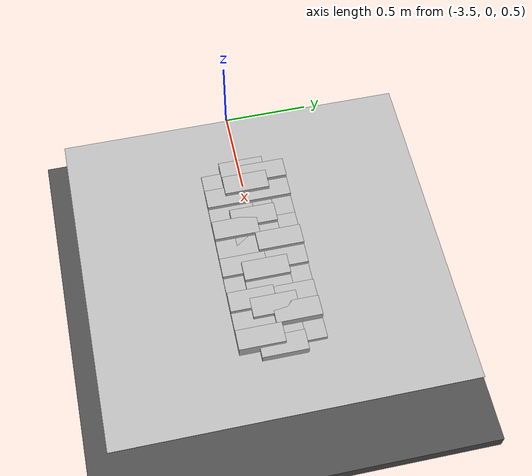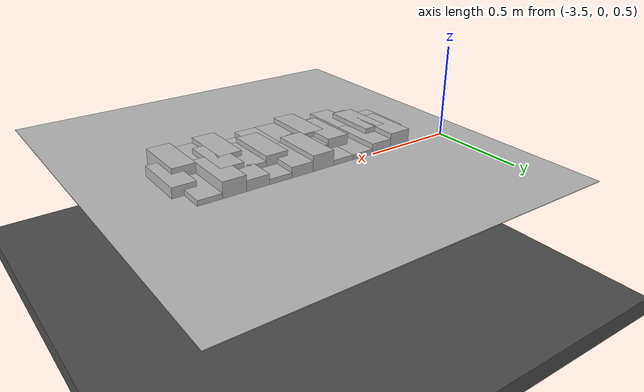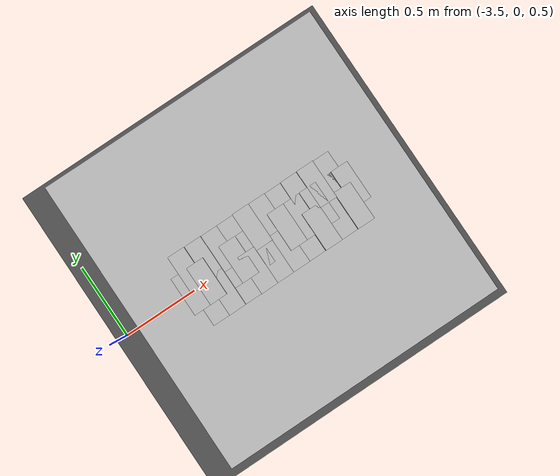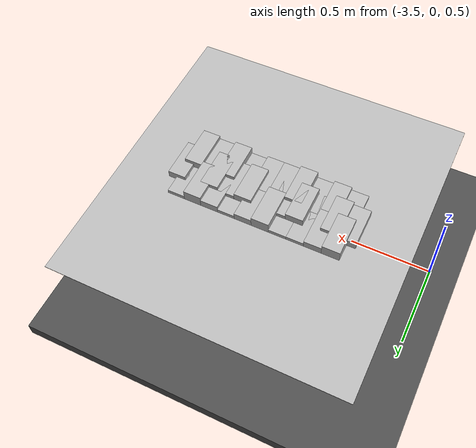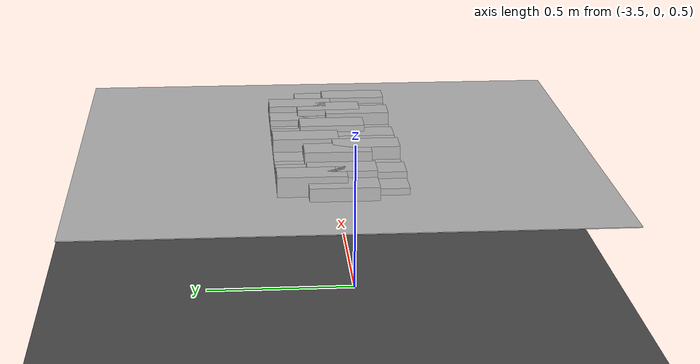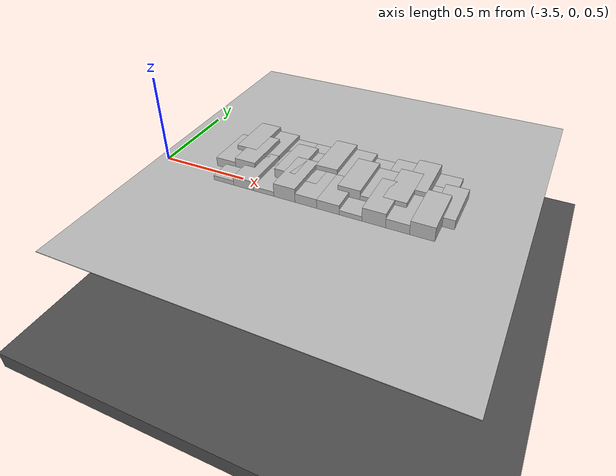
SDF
<sdf version="1.6">
 <world name="default">
  <model name="ground_plane">
   <static>1</static>
   <link name="link">
    <collision name="collision">
     <geometry><plane><normal>0 0 1</normal><size>100 100</size></plane></geometry>
     <surface><friction><ode><mu>100</mu><mu2>50</mu2></ode></friction></surface>
    </collision>
    <visual name="visual">
     <cast_shadows>0</cast_shadows>
     <geometry><plane><normal>0 0 1</normal><size>100 100</size></plane></geometry>
     <material>
      <script><uri>file://media/materials/scripts/gazebo.material</uri><name>Gazebo/Grey</name></script>
     </material>
    </visual>
   </link>
  </model>
  <model name="frc2016_roughterrain_0">
   <link name="link_clone_10">
    <pose>-2.32816 -0.027351 -0.073164 0 -0 0</pose>
    <inertial>
     <inertia><ixx>nan</ixx><ixy>0</ixy><ixz>0</ixz><iyy>nan</iyy><iyz>0</iyz><izz>nan</izz></inertia>
     <mass>0</mass>
    </inertial>
    <visual name="row1_block3_md">
     <pose>0.28575 0.1143 0.10968 0 -0 0</pose>
     <geometry><box><size>0.115452 0.257474 0.0508</size></box></geometry>
     <material><shader type="pixel"/></material>
    </visual>
    <visual name="row1_block4_sm">
     <pose>0.17145 0.1143 0.09698 0 -0 0</pose>
     <geometry><box><size>0.115452 0.257474 0.0254</size></box></geometry>
     <material><shader type="pixel"/></material>
    </visual>
    <visual name="platform">
     <pose>0 0 0.08269 0 -0 0</pose>
     <geometry><box><size>1.91826 2.01688 0.003175</size></box></geometry>
     <material><shader type="pixel"/></material>
    </visual>
    <visual name="row1_block1_sm">
     <pose>0.51435 0.1143 0.09698 0 -0 0</pose>
     <geometry><box><size>0.115452 0.257474 0.0254</size></box></geometry>
     <material><shader type="pixel"/></material>
    </visual>
    <visual name="row1_block2_lg">
     <pose>0.40005 0.1143 0.12238 0 -0 0</pose>
     <geometry><box><size>0.115452 0.257474 0.0762</size></box></geometry>
     <material><shader type="pixel"/></material>
    </visual>
    <visual name="row1_block5_md">
     <pose>0.05715 0.1143 0.10968 0 -0 0</pose>
     <geometry><box><size>0.115452 0.257474 0.0508</size></box></geometry>
     <material><shader type="pixel"/></material>
    </visual>
    <visual name="row1_block6_lg">
     <pose>-0.05715 0.1143 0.12238 0 -0 0</pose>
     <geometry><box><size>0.115452 0.257474 0.0762</size></box></geometry>
     <material><shader type="pixel"/></material>
    </visual>
    <visual name="row1_block7_sm">
     <pose>-0.17145 0.1143 0.09698 0 -0 0</pose>
     <geometry><box><size>0.115452 0.257474 0.0254</size></box></geometry>
     <material><shader type="pixel"/></material>
    </visual>
    <visual name="row1_block8_sm">
     <pose>-0.28575 0.1143 0.09698 0 -0 0</pose>
     <geometry><box><size>0.115452 0.257474 0.0254</size></box></geometry>
     <material><shader type="pixel"/></material>
    </visual>
    <visual name="row1_block9_md">
     <pose>-0.40005 0.1143 0.10968 0 -0 0</pose>
     <geometry><box><size>0.115452 0.257474 0.0508</size></box></geometry>
     <material><shader type="pixel"/></material>
    </visual>
    <visual name="row1_block10_lg">
     <pose>-0.51435 0.1143 0.12238 0 -0 0</pose>
     <geometry><box><size>0.115452 0.257474 0.0762</size></box></geometry>
     <material><shader type="pixel"/></material>
    </visual>
    <visual name="row2_block1_md">
     <pose>0.5715 0 0.10968 0 -0 0</pose>
     <geometry><box><size>0.115452 0.257474 0.0508</size></box></geometry>
     <material><shader type="pixel"/></material>
    </visual>
    <visual name="row2_block2_sm">
     <pose>0.4572 0 0.09698 0 -0 0</pose>
     <geometry><box><size>0.115452 0.257474 0.0254</size></box></geometry>
     <material><shader type="pixel"/></material>
    </visual>
    <visual name="row2_block3_lg">
     <pose>0.3429 0 0.12238 0 -0 0</pose>
     <geometry><box><size>0.115452 0.257474 0.0762</size></box></geometry>
     <material><shader type="pixel"/></material>
    </visual>
    <visual name="row2_block4_md">
     <pose>0.2286 0 0.10968 0 -0 0</pose>
     <geometry><box><size>0.115452 0.257474 0.0508</size></box></geometry>
     <material><shader type="pixel"/></material>
    </visual>
    <visual name="row2_block5_lg">
     <pose>0.1143 0 0.12238 0 -0 0</pose>
     <geometry><box><size>0.115452 0.257474 0.0762</size></box></geometry>
     <material><shader type="pixel"/></material>
    </visual>
    <visual name="row2_block6_sm">
     <pose>0 0 0.09698 0 -0 0</pose>
     <geometry><box><size>0.115452 0.257474 0.0254</size></box></geometry>
     <material><shader type="pixel"/></material>
    </visual>
    <visual name="row2_block7_md">
     <pose>-0.1143 0 0.10968 0 -0 0</pose>
     <geometry><box><size>0.115452 0.257474 0.0508</size></box></geometry>
     <material><shader type="pixel"/></material>
    </visual>
    <visual name="row2_block8_lg">
     <pose>-0.2286 0 0.12238 0 -0 0</pose>
     <geometry><box><size>0.115452 0.257474 0.0762</size></box></geometry>
     <material><shader type="pixel"/></material>
    </visual>
    <visual name="row2_block9_sm">
     <pose>-0.3429 0 0.09698 0 -0 0</pose>
     <geometry><box><size>0.115452 0.257474 0.0254</size></box></geometry>
     <material><shader type="pixel"/></material>
    </visual>
    <visual name="row2_block10_lg">
     <pose>-0.4572 0 0.12238 0 -0 0</pose>
     <geometry><box><size>0.115452 0.257474 0.0762</size></box></geometry>
     <material><shader type="pixel"/></material>
    </visual>
    <visual name="row2_block11_md">
     <pose>-0.5715 0 0.10968 0 -0 0</pose>
     <geometry><box><size>0.115452 0.257474 0.0508</size></box></geometry>
     <material><shader type="pixel"/></material>
    </visual>
    <visual name="row3_block2_md">
     <pose>0.40005 -0.1143 0.10968 0 -0 0</pose>
     <geometry><box><size>0.115452 0.257474 0.0508</size></box></geometry>
     <material><shader type="pixel"/></material>
    </visual>
    <visual name="row3_block1_lg">
     <pose>0.51435 -0.1143 0.12238 0 -0 0</pose>
     <geometry><box><size>0.115452 0.257474 0.0762</size></box></geometry>
     <material><shader type="pixel"/></material>
    </visual>
    <visual name="row3_block3_lg">
     <pose>0.28575 -0.1143 0.12238 0 -0 0</pose>
     <geometry><box><size>0.115452 0.257474 0.0762</size></box></geometry>
     <material><shader type="pixel"/></material>
    </visual>
    <visual name="row3_block4_sm">
     <pose>0.17145 -0.1143 0.09698 0 -0 0</pose>
     <geometry><box><size>0.115452 0.257474 0.0254</size></box></geometry>
     <material><shader type="pixel"/></material>
    </visual>
    <visual name="row3_block5_md">
     <pose>0.05715 -0.1143 0.10968 0 -0 0</pose>
     <geometry><box><size>0.115452 0.257474 0.0508</size></box></geometry>
     <material><shader type="pixel"/></material>
    </visual>
    <visual name="row3_block6_md">
     <pose>-0.05715 -0.1143 0.10968 0 -0 0</pose>
     <geometry><box><size>0.115452 0.257474 0.0508</size></box></geometry>
     <material><shader type="pixel"/></material>
    </visual>
    <visual name="row3_block8_sm">
     <pose>-0.28575 -0.1143 0.09698 0 -0 0</pose>
     <geometry><box><size>0.115452 0.257474 0.0254</size></box></geometry>
     <material><shader type="pixel"/></material>
    </visual>
    <visual name="row3_block7_lg">
     <pose>-0.17145 -0.1143 0.12238 0 -0 0</pose>
     <geometry><box><size>0.115452 0.257474 0.0762</size></box></geometry>
     <material><shader type="pixel"/></material>
    </visual>
    <visual name="row3_block9_md">
     <pose>-0.40005 -0.1143 0.10968 0 -0 0</pose>
     <geometry><box><size>0.115452 0.257474 0.0508</size></box></geometry>
     <material><shader type="pixel"/></material>
    </visual>
    <visual name="row3_block10_sm">
     <pose>-0.51435 -0.1143 0.09698 0 -0 0</pose>
     <geometry><box><size>0.115452 0.257474 0.0254</size></box></geometry>
     <material><shader type="pixel"/></material>
    </visual>
    <collision name="row2_block5_lg_0">
     <pose>0.1143 0 0.12238 0 -0 0</pose>
     <geometry><box><size>0.115452 0.257474 0.0762</size></box></geometry>
     <surface>
      <friction>
       <ode><mu>1</mu><mu2>1</mu2><fdir1>0 0 0</fdir1><slip1>0</slip1><slip2>0</slip2></ode>
       <torsional>
        <coefficient>1</coefficient>
        <patch_radius>0</patch_radius>
        <surface_radius>0</surface_radius>
        <use_patch_radius>1</use_patch_radius>
        <ode><slip>0</slip></ode>
       </torsional>
      </friction>
      <bounce><restitution_coefficient>0</restitution_coefficient><threshold>1e+06</threshold></bounce>
      <contact>
       <collide_without_contact>0</collide_without_contact>
       <collide_without_contact_bitmask>1</collide_without_contact_bitmask>
       <collide_bitmask>1</collide_bitmask>
       <ode>
        <soft_cfm>0</soft_cfm>
        <soft_erp>0.2</soft_erp>
        <kp>1e+13</kp>
        <kd>1</kd>
        <max_vel>0.01</max_vel>
        <min_depth>0</min_depth>
       </ode>
       <bullet>
        <split_impulse>1</split_impulse>
        <split_impulse_penetration_threshold>-0.01</split_impulse_penetration_threshold>
        <soft_cfm>0</soft_cfm>
        <soft_erp>0.2</soft_erp>
        <kp>1e+13</kp>
        <kd>1</kd>
       </bullet>
      </contact>
     </surface>
    </collision>
    <collision name="platform_0">
     <pose>0 0 0.08269 0 -0 0</pose>
     <geometry><box><size>1.91826 2.01688 0.003175</size></box></geometry>
     <surface>
      <friction>
       <ode><mu>1</mu><mu2>1</mu2><fdir1>0 0 0</fdir1><slip1>0</slip1><slip2>0</slip2></ode>
       <torsional>
        <coefficient>1</coefficient>
        <patch_radius>0</patch_radius>
        <surface_radius>0</surface_radius>
        <use_patch_radius>1</use_patch_radius>
        <ode><slip>0</slip></ode>
       </torsional>
      </friction>
      <bounce><restitution_coefficient>0</restitution_coefficient><threshold>1e+06</threshold></bounce>
      <contact>
       <collide_without_contact>0</collide_without_contact>
       <collide_without_contact_bitmask>1</collide_without_contact_bitmask>
       <collide_bitmask>1</collide_bitmask>
       <ode>
        <soft_cfm>0</soft_cfm>
        <soft_erp>0.2</soft_erp>
        <kp>1e+13</kp>
        <kd>1</kd>
        <max_vel>0.01</max_vel>
        <min_depth>0</min_depth>
       </ode>
       <bullet>
        <split_impulse>1</split_impulse>
        <split_impulse_penetration_threshold>-0.01</split_impulse_penetration_threshold>
        <soft_cfm>0</soft_cfm>
        <soft_erp>0.2</soft_erp>
        <kp>1e+13</kp>
        <kd>1</kd>
       </bullet>
      </contact>
     </surface>
    </collision>
    <collision name="row1_block3_md_0">
     <pose>0.28575 0.1143 0.10968 0 -0 0</pose>
     <geometry><box><size>0.115452 0.257474 0.0508</size></box></geometry>
     <surface>
      <friction>
       <ode><mu>1</mu><mu2>1</mu2><fdir1>0 0 0</fdir1><slip1>0</slip1><slip2>0</slip2></ode>
       <torsional>
        <coefficient>1</coefficient>
        <patch_radius>0</patch_radius>
        <surface_radius>0</surface_radius>
        <use_patch_radius>1</use_patch_radius>
        <ode><slip>0</slip></ode>
       </torsional>
      </friction>
      <bounce><restitution_coefficient>0</restitution_coefficient><threshold>1e+06</threshold></bounce>
      <contact>
       <collide_without_contact>0</collide_without_contact>
       <collide_without_contact_bitmask>1</collide_without_contact_bitmask>
       <collide_bitmask>1</collide_bitmask>
       <ode>
        <soft_cfm>0</soft_cfm>
        <soft_erp>0.2</soft_erp>
        <kp>1e+13</kp>
        <kd>1</kd>
        <max_vel>0.01</max_vel>
        <min_depth>0</min_depth>
       </ode>
       <bullet>
        <split_impulse>1</split_impulse>
        <split_impulse_penetration_threshold>-0.01</split_impulse_penetration_threshold>
        <soft_cfm>0</soft_cfm>
        <soft_erp>0.2</soft_erp>
        <kp>1e+13</kp>
        <kd>1</kd>
       </bullet>
      </contact>
     </surface>
    </collision>
    <collision name="row1_block2_lg_0">
     <pose>0.40005 0.1143 0.12238 0 -0 0</pose>
     <geometry><box><size>0.115452 0.257474 0.0762</size></box></geometry>
     <surface>
      <friction>
       <ode><mu>1</mu><mu2>1</mu2><fdir1>0 0 0</fdir1><slip1>0</slip1><slip2>0</slip2></ode>
       <torsional>
        <coefficient>1</coefficient>
        <patch_radius>0</patch_radius>
        <surface_radius>0</surface_radius>
        <use_patch_radius>1</use_patch_radius>
        <ode><slip>0</slip></ode>
       </torsional>
      </friction>
      <bounce><restitution_coefficient>0</restitution_coefficient><threshold>1e+06</threshold></bounce>
      <contact>
       <collide_without_contact>0</collide_without_contact>
       <collide_without_contact_bitmask>1</collide_without_contact_bitmask>
       <collide_bitmask>1</collide_bitmask>
       <ode>
        <soft_cfm>0</soft_cfm>
        <soft_erp>0.2</soft_erp>
        <kp>1e+13</kp>
        <kd>1</kd>
        <max_vel>0.01</max_vel>
        <min_depth>0</min_depth>
       </ode>
       <bullet>
        <split_impulse>1</split_impulse>
        <split_impulse_penetration_threshold>-0.01</split_impulse_penetration_threshold>
        <soft_cfm>0</soft_cfm>
        <soft_erp>0.2</soft_erp>
        <kp>1e+13</kp>
        <kd>1</kd>
       </bullet>
      </contact>
     </surface>
    </collision>
    <collision name="row1_block1_sm_0">
     <pose>0.51435 0.1143 0.09698 0 -0 0</pose>
     <geometry><box><size>0.115452 0.257474 0.0254</size></box></geometry>
     <surface>
      <friction>
       <ode><mu>1</mu><mu2>1</mu2><fdir1>0 0 0</fdir1><slip1>0</slip1><slip2>0</slip2></ode>
       <torsional>
        <coefficient>1</coefficient>
        <patch_radius>0</patch_radius>
        <surface_radius>0</surface_radius>
        <use_patch_radius>1</use_patch_radius>
        <ode><slip>0</slip></ode>
       </torsional>
      </friction>
      <bounce><restitution_coefficient>0</restitution_coefficient><threshold>1e+06</threshold></bounce>
      <contact>
       <collide_without_contact>0</collide_without_contact>
       <collide_without_contact_bitmask>1</collide_without_contact_bitmask>
       <collide_bitmask>1</collide_bitmask>
       <ode>
        <soft_cfm>0</soft_cfm>
        <soft_erp>0.2</soft_erp>
        <kp>1e+13</kp>
        <kd>1</kd>
        <max_vel>0.01</max_vel>
        <min_depth>0</min_depth>
       </ode>
       <bullet>
        <split_impulse>1</split_impulse>
        <split_impulse_penetration_threshold>-0.01</split_impulse_penetration_threshold>
        <soft_cfm>0</soft_cfm>
        <soft_erp>0.2</soft_erp>
        <kp>1e+13</kp>
        <kd>1</kd>
       </bullet>
      </contact>
     </surface>
    </collision>
    <collision name="row1_block5_md_0">
     <pose>0.05715 0.1143 0.10968 0 -0 0</pose>
     <geometry><box><size>0.115452 0.257474 0.0508</size></box></geometry>
     <surface>
      <friction>
       <ode><mu>1</mu><mu2>1</mu2><fdir1>0 0 0</fdir1><slip1>0</slip1><slip2>0</slip2></ode>
       <torsional>
        <coefficient>1</coefficient>
        <patch_radius>0</patch_radius>
        <surface_radius>0</surface_radius>
        <use_patch_radius>1</use_patch_radius>
        <ode><slip>0</slip></ode>
       </torsional>
      </friction>
      <bounce><restitution_coefficient>0</restitution_coefficient><threshold>1e+06</threshold></bounce>
      <contact>
       <collide_without_contact>0</collide_without_contact>
       <collide_without_contact_bitmask>1</collide_without_contact_bitmask>
       <collide_bitmask>1</collide_bitmask>
       <ode>
        <soft_cfm>0</soft_cfm>
        <soft_erp>0.2</soft_erp>
        <kp>1e+13</kp>
        <kd>1</kd>
        <max_vel>0.01</max_vel>
        <min_depth>0</min_depth>
       </ode>
       <bullet>
        <split_impulse>1</split_impulse>
        <split_impulse_penetration_threshold>-0.01</split_impulse_penetration_threshold>
        <soft_cfm>0</soft_cfm>
        <soft_erp>0.2</soft_erp>
        <kp>1e+13</kp>
        <kd>1</kd>
       </bullet>
      </contact>
     </surface>
    </collision>
    <collision name="row1_block4_sm_0">
     <pose>0.17145 0.1143 0.09698 0 -0 0</pose>
     <geometry><box><size>0.115452 0.257474 0.0254</size></box></geometry>
     <surface>
      <friction>
       <ode><mu>1</mu><mu2>1</mu2><fdir1>0 0 0</fdir1><slip1>0</slip1><slip2>0</slip2></ode>
       <torsional>
        <coefficient>1</coefficient>
        <patch_radius>0</patch_radius>
        <surface_radius>0</surface_radius>
        <use_patch_radius>1</use_patch_radius>
        <ode><slip>0</slip></ode>
       </torsional>
      </friction>
      <bounce><restitution_coefficient>0</restitution_coefficient><threshold>1e+06</threshold></bounce>
      <contact>
       <collide_without_contact>0</collide_without_contact>
       <collide_without_contact_bitmask>1</collide_without_contact_bitmask>
       <collide_bitmask>1</collide_bitmask>
       <ode>
        <soft_cfm>0</soft_cfm>
        <soft_erp>0.2</soft_erp>
        <kp>1e+13</kp>
        <kd>1</kd>
        <max_vel>0.01</max_vel>
        <min_depth>0</min_depth>
       </ode>
       <bullet>
        <split_impulse>1</split_impulse>
        <split_impulse_penetration_threshold>-0.01</split_impulse_penetration_threshold>
        <soft_cfm>0</soft_cfm>
        <soft_erp>0.2</soft_erp>
        <kp>1e+13</kp>
        <kd>1</kd>
       </bullet>
      </contact>
     </surface>
    </collision>
    <collision name="row1_block6_lg_0">
     <pose>-0.05715 0.1143 0.12238 0 -0 0</pose>
     <geometry><box><size>0.115452 0.257474 0.0762</size></box></geometry>
     <surface>
      <friction>
       <ode><mu>1</mu><mu2>1</mu2><fdir1>0 0 0</fdir1><slip1>0</slip1><slip2>0</slip2></ode>
       <torsional>
        <coefficient>1</coefficient>
        <patch_radius>0</patch_radius>
        <surface_radius>0</surface_radius>
        <use_patch_radius>1</use_patch_radius>
        <ode><slip>0</slip></ode>
       </torsional>
      </friction>
      <bounce><restitution_coefficient>0</restitution_coefficient><threshold>1e+06</threshold></bounce>
      <contact>
       <collide_without_contact>0</collide_without_contact>
       <collide_without_contact_bitmask>1</collide_without_contact_bitmask>
       <collide_bitmask>1</collide_bitmask>
       <ode>
        <soft_cfm>0</soft_cfm>
        <soft_erp>0.2</soft_erp>
        <kp>1e+13</kp>
        <kd>1</kd>
        <max_vel>0.01</max_vel>
        <min_depth>0</min_depth>
       </ode>
       <bullet>
        <split_impulse>1</split_impulse>
        <split_impulse_penetration_threshold>-0.01</split_impulse_penetration_threshold>
        <soft_cfm>0</soft_cfm>
        <soft_erp>0.2</soft_erp>
        <kp>1e+13</kp>
        <kd>1</kd>
       </bullet>
      </contact>
     </surface>
    </collision>
    <collision name="row1_block7_sm_0">
     <pose>-0.17145 0.1143 0.09698 0 -0 0</pose>
     <geometry><box><size>0.115452 0.257474 0.0254</size></box></geometry>
     <surface>
      <friction>
       <ode><mu>1</mu><mu2>1</mu2><fdir1>0 0 0</fdir1><slip1>0</slip1><slip2>0</slip2></ode>
       <torsional>
        <coefficient>1</coefficient>
        <patch_radius>0</patch_radius>
        <surface_radius>0</surface_radius>
        <use_patch_radius>1</use_patch_radius>
        <ode><slip>0</slip></ode>
       </torsional>
      </friction>
      <bounce><restitution_coefficient>0</restitution_coefficient><threshold>1e+06</threshold></bounce>
      <contact>
       <collide_without_contact>0</collide_without_contact>
       <collide_without_contact_bitmask>1</collide_without_contact_bitmask>
       <collide_bitmask>1</collide_bitmask>
       <ode>
        <soft_cfm>0</soft_cfm>
        <soft_erp>0.2</soft_erp>
        <kp>1e+13</kp>
        <kd>1</kd>
        <max_vel>0.01</max_vel>
        <min_depth>0</min_depth>
       </ode>
       <bullet>
        <split_impulse>1</split_impulse>
        <split_impulse_penetration_threshold>-0.01</split_impulse_penetration_threshold>
        <soft_cfm>0</soft_cfm>
        <soft_erp>0.2</soft_erp>
        <kp>1e+13</kp>
        <kd>1</kd>
       </bullet>
      </contact>
     </surface>
    </collision>
    <collision name="row2_block1_md_0">
     <pose>0.5715 0 0.10968 0 -0 0</pose>
     <geometry><box><size>0.115452 0.257474 0.0508</size></box></geometry>
     <surface>
      <friction>
       <ode><mu>1</mu><mu2>1</mu2><fdir1>0 0 0</fdir1><slip1>0</slip1><slip2>0</slip2></ode>
       <torsional>
        <coefficient>1</coefficient>
        <patch_radius>0</patch_radius>
        <surface_radius>0</surface_radius>
        <use_patch_radius>1</use_patch_radius>
        <ode><slip>0</slip></ode>
       </torsional>
      </friction>
      <bounce><restitution_coefficient>0</restitution_coefficient><threshold>1e+06</threshold></bounce>
      <contact>
       <collide_without_contact>0</collide_without_contact>
       <collide_without_contact_bitmask>1</collide_without_contact_bitmask>
       <collide_bitmask>1</collide_bitmask>
       <ode>
        <soft_cfm>0</soft_cfm>
        <soft_erp>0.2</soft_erp>
        <kp>1e+13</kp>
        <kd>1</kd>
        <max_vel>0.01</max_vel>
        <min_depth>0</min_depth>
       </ode>
       <bullet>
        <split_impulse>1</split_impulse>
        <split_impulse_penetration_threshold>-0.01</split_impulse_penetration_threshold>
        <soft_cfm>0</soft_cfm>
        <soft_erp>0.2</soft_erp>
        <kp>1e+13</kp>
        <kd>1</kd>
       </bullet>
      </contact>
     </surface>
    </collision>
    <collision name="row1_block8_sm_0">
     <pose>-0.28575 0.1143 0.09698 0 -0 0</pose>
     <geometry><box><size>0.115452 0.257474 0.0254</size></box></geometry>
     <surface>
      <friction>
       <ode><mu>1</mu><mu2>1</mu2><fdir1>0 0 0</fdir1><slip1>0</slip1><slip2>0</slip2></ode>
       <torsional>
        <coefficient>1</coefficient>
        <patch_radius>0</patch_radius>
        <surface_radius>0</surface_radius>
        <use_patch_radius>1</use_patch_radius>
        <ode><slip>0</slip></ode>
       </torsional>
      </friction>
      <bounce><restitution_coefficient>0</restitution_coefficient><threshold>1e+06</threshold></bounce>
      <contact>
       <collide_without_contact>0</collide_without_contact>
       <collide_without_contact_bitmask>1</collide_without_contact_bitmask>
       <collide_bitmask>1</collide_bitmask>
       <ode>
        <soft_cfm>0</soft_cfm>
        <soft_erp>0.2</soft_erp>
        <kp>1e+13</kp>
        <kd>1</kd>
        <max_vel>0.01</max_vel>
        <min_depth>0</min_depth>
       </ode>
       <bullet>
        <split_impulse>1</split_impulse>
        <split_impulse_penetration_threshold>-0.01</split_impulse_penetration_threshold>
        <soft_cfm>0</soft_cfm>
        <soft_erp>0.2</soft_erp>
        <kp>1e+13</kp>
        <kd>1</kd>
       </bullet>
      </contact>
     </surface>
    </collision>
    <collision name="row1_block10_lg_0">
     <pose>-0.51435 0.1143 0.12238 0 -0 0</pose>
     <geometry><box><size>0.115452 0.257474 0.0762</size></box></geometry>
     <surface>
      <friction>
       <ode><mu>1</mu><mu2>1</mu2><fdir1>0 0 0</fdir1><slip1>0</slip1><slip2>0</slip2></ode>
       <torsional>
        <coefficient>1</coefficient>
        <patch_radius>0</patch_radius>
        <surface_radius>0</surface_radius>
        <use_patch_radius>1</use_patch_radius>
        <ode><slip>0</slip></ode>
       </torsional>
      </friction>
      <bounce><restitution_coefficient>0</restitution_coefficient><threshold>1e+06</threshold></bounce>
      <contact>
       <collide_without_contact>0</collide_without_contact>
       <collide_without_contact_bitmask>1</collide_without_contact_bitmask>
       <collide_bitmask>1</collide_bitmask>
       <ode>
        <soft_cfm>0</soft_cfm>
        <soft_erp>0.2</soft_erp>
        <kp>1e+13</kp>
        <kd>1</kd>
        <max_vel>0.01</max_vel>
        <min_depth>0</min_depth>
       </ode>
       <bullet>
        <split_impulse>1</split_impulse>
        <split_impulse_penetration_threshold>-0.01</split_impulse_penetration_threshold>
        <soft_cfm>0</soft_cfm>
        <soft_erp>0.2</soft_erp>
        <kp>1e+13</kp>
        <kd>1</kd>
       </bullet>
      </contact>
     </surface>
    </collision>
    <collision name="row1_block9_md_0">
     <pose>-0.40005 0.1143 0.10968 0 -0 0</pose>
     <geometry><box><size>0.115452 0.257474 0.0508</size></box></geometry>
     <surface>
      <friction>
       <ode><mu>1</mu><mu2>1</mu2><fdir1>0 0 0</fdir1><slip1>0</slip1><slip2>0</slip2></ode>
       <torsional>
        <coefficient>1</coefficient>
        <patch_radius>0</patch_radius>
        <surface_radius>0</surface_radius>
        <use_patch_radius>1</use_patch_radius>
        <ode><slip>0</slip></ode>
       </torsional>
      </friction>
      <bounce><restitution_coefficient>0</restitution_coefficient><threshold>1e+06</threshold></bounce>
      <contact>
       <collide_without_contact>0</collide_without_contact>
       <collide_without_contact_bitmask>1</collide_without_contact_bitmask>
       <collide_bitmask>1</collide_bitmask>
       <ode>
        <soft_cfm>0</soft_cfm>
        <soft_erp>0.2</soft_erp>
        <kp>1e+13</kp>
        <kd>1</kd>
        <max_vel>0.01</max_vel>
        <min_depth>0</min_depth>
       </ode>
       <bullet>
        <split_impulse>1</split_impulse>
        <split_impulse_penetration_threshold>-0.01</split_impulse_penetration_threshold>
        <soft_cfm>0</soft_cfm>
        <soft_erp>0.2</soft_erp>
        <kp>1e+13</kp>
        <kd>1</kd>
       </bullet>
      </contact>
     </surface>
    </collision>
    <collision name="row2_block2_sm_0">
     <pose>0.4572 0 0.09698 0 -0 0</pose>
     <geometry><box><size>0.115452 0.257474 0.0254</size></box></geometry>
     <surface>
      <friction>
       <ode><mu>1</mu><mu2>1</mu2><fdir1>0 0 0</fdir1><slip1>0</slip1><slip2>0</slip2></ode>
       <torsional>
        <coefficient>1</coefficient>
        <patch_radius>0</patch_radius>
        <surface_radius>0</surface_radius>
        <use_patch_radius>1</use_patch_radius>
        <ode><slip>0</slip></ode>
       </torsional>
      </friction>
      <bounce><restitution_coefficient>0</restitution_coefficient><threshold>1e+06</threshold></bounce>
      <contact>
       <collide_without_contact>0</collide_without_contact>
       <collide_without_contact_bitmask>1</collide_without_contact_bitmask>
       <collide_bitmask>1</collide_bitmask>
       <ode>
        <soft_cfm>0</soft_cfm>
        <soft_erp>0.2</soft_erp>
        <kp>1e+13</kp>
        <kd>1</kd>
        <max_vel>0.01</max_vel>
        <min_depth>0</min_depth>
       </ode>
       <bullet>
        <split_impulse>1</split_impulse>
        <split_impulse_penetration_threshold>-0.01</split_impulse_penetration_threshold>
        <soft_cfm>0</soft_cfm>
        <soft_erp>0.2</soft_erp>
        <kp>1e+13</kp>
        <kd>1</kd>
       </bullet>
      </contact>
     </surface>
    </collision>
    <collision name="row2_block4_md_0">
     <pose>0.2286 0 0.10968 0 -0 0</pose>
     <geometry><box><size>0.115452 0.257474 0.0508</size></box></geometry>
     <surface>
      <friction>
       <ode><mu>1</mu><mu2>1</mu2><fdir1>0 0 0</fdir1><slip1>0</slip1><slip2>0</slip2></ode>
       <torsional>
        <coefficient>1</coefficient>
        <patch_radius>0</patch_radius>
        <surface_radius>0</surface_radius>
        <use_patch_radius>1</use_patch_radius>
        <ode><slip>0</slip></ode>
       </torsional>
      </friction>
      <bounce><restitution_coefficient>0</restitution_coefficient><threshold>1e+06</threshold></bounce>
      <contact>
       <collide_without_contact>0</collide_without_contact>
       <collide_without_contact_bitmask>1</collide_without_contact_bitmask>
       <collide_bitmask>1</collide_bitmask>
       <ode>
        <soft_cfm>0</soft_cfm>
        <soft_erp>0.2</soft_erp>
        <kp>1e+13</kp>
        <kd>1</kd>
        <max_vel>0.01</max_vel>
        <min_depth>0</min_depth>
       </ode>
       <bullet>
        <split_impulse>1</split_impulse>
        <split_impulse_penetration_threshold>-0.01</split_impulse_penetration_threshold>
        <soft_cfm>0</soft_cfm>
        <soft_erp>0.2</soft_erp>
        <kp>1e+13</kp>
        <kd>1</kd>
       </bullet>
      </contact>
     </surface>
    </collision>
    <collision name="row2_block6_sm_0">
     <pose>0 0 0.09698 0 -0 0</pose>
     <geometry><box><size>0.115452 0.257474 0.0254</size></box></geometry>
     <surface>
      <friction>
       <ode><mu>1</mu><mu2>1</mu2><fdir1>0 0 0</fdir1><slip1>0</slip1><slip2>0</slip2></ode>
       <torsional>
        <coefficient>1</coefficient>
        <patch_radius>0</patch_radius>
        <surface_radius>0</surface_radius>
        <use_patch_radius>1</use_patch_radius>
        <ode><slip>0</slip></ode>
       </torsional>
      </friction>
      <bounce><restitution_coefficient>0</restitution_coefficient><threshold>1e+06</threshold></bounce>
      <contact>
       <collide_without_contact>0</collide_without_contact>
       <collide_without_contact_bitmask>1</collide_without_contact_bitmask>
       <collide_bitmask>1</collide_bitmask>
       <ode>
        <soft_cfm>0</soft_cfm>
        <soft_erp>0.2</soft_erp>
        <kp>1e+13</kp>
        <kd>1</kd>
        <max_vel>0.01</max_vel>
        <min_depth>0</min_depth>
       </ode>
       <bullet>
        <split_impulse>1</split_impulse>
        <split_impulse_penetration_threshold>-0.01</split_impulse_penetration_threshold>
        <soft_cfm>0</soft_cfm>
        <soft_erp>0.2</soft_erp>
        <kp>1e+13</kp>
        <kd>1</kd>
       </bullet>
      </contact>
     </surface>
    </collision>
    <collision name="row2_block3_lg_0">
     <pose>0.3429 0 0.12238 0 -0 0</pose>
     <geometry><box><size>0.115452 0.257474 0.0762</size></box></geometry>
     <surface>
      <friction>
       <ode><mu>1</mu><mu2>1</mu2><fdir1>0 0 0</fdir1><slip1>0</slip1><slip2>0</slip2></ode>
       <torsional>
        <coefficient>1</coefficient>
        <patch_radius>0</patch_radius>
        <surface_radius>0</surface_radius>
        <use_patch_radius>1</use_patch_radius>
        <ode><slip>0</slip></ode>
       </torsional>
      </friction>
      <bounce><restitution_coefficient>0</restitution_coefficient><threshold>1e+06</threshold></bounce>
      <contact>
       <collide_without_contact>0</collide_without_contact>
       <collide_without_contact_bitmask>1</collide_without_contact_bitmask>
       <collide_bitmask>1</collide_bitmask>
       <ode>
        <soft_cfm>0</soft_cfm>
        <soft_erp>0.2</soft_erp>
        <kp>1e+13</kp>
        <kd>1</kd>
        <max_vel>0.01</max_vel>
        <min_depth>0</min_depth>
       </ode>
       <bullet>
        <split_impulse>1</split_impulse>
        <split_impulse_penetration_threshold>-0.01</split_impulse_penetration_threshold>
        <soft_cfm>0</soft_cfm>
        <soft_erp>0.2</soft_erp>
        <kp>1e+13</kp>
        <kd>1</kd>
       </bullet>
      </contact>
     </surface>
    </collision>
    <collision name="row2_block7_md_0">
     <pose>-0.1143 0 0.10968 0 -0 0</pose>
     <geometry><box><size>0.115452 0.257474 0.0508</size></box></geometry>
     <surface>
      <friction>
       <ode><mu>1</mu><mu2>1</mu2><fdir1>0 0 0</fdir1><slip1>0</slip1><slip2>0</slip2></ode>
       <torsional>
        <coefficient>1</coefficient>
        <patch_radius>0</patch_radius>
        <surface_radius>0</surface_radius>
        <use_patch_radius>1</use_patch_radius>
        <ode><slip>0</slip></ode>
       </torsional>
      </friction>
      <bounce><restitution_coefficient>0</restitution_coefficient><threshold>1e+06</threshold></bounce>
      <contact>
       <collide_without_contact>0</collide_without_contact>
       <collide_without_contact_bitmask>1</collide_without_contact_bitmask>
       <collide_bitmask>1</collide_bitmask>
       <ode>
        <soft_cfm>0</soft_cfm>
        <soft_erp>0.2</soft_erp>
        <kp>1e+13</kp>
        <kd>1</kd>
        <max_vel>0.01</max_vel>
        <min_depth>0</min_depth>
       </ode>
       <bullet>
        <split_impulse>1</split_impulse>
        <split_impulse_penetration_threshold>-0.01</split_impulse_penetration_threshold>
        <soft_cfm>0</soft_cfm>
        <soft_erp>0.2</soft_erp>
        <kp>1e+13</kp>
        <kd>1</kd>
       </bullet>
      </contact>
     </surface>
    </collision>
    <collision name="row2_block9_sm_0">
     <pose>-0.3429 0 0.09698 0 -0 0</pose>
     <geometry><box><size>0.115452 0.257474 0.0254</size></box></geometry>
     <surface>
      <friction>
       <ode><mu>1</mu><mu2>1</mu2><fdir1>0 0 0</fdir1><slip1>0</slip1><slip2>0</slip2></ode>
       <torsional>
        <coefficient>1</coefficient>
        <patch_radius>0</patch_radius>
        <surface_radius>0</surface_radius>
        <use_patch_radius>1</use_patch_radius>
        <ode><slip>0</slip></ode>
       </torsional>
      </friction>
      <bounce><restitution_coefficient>0</restitution_coefficient><threshold>1e+06</threshold></bounce>
      <contact>
       <collide_without_contact>0</collide_without_contact>
       <collide_without_contact_bitmask>1</collide_without_contact_bitmask>
       <collide_bitmask>1</collide_bitmask>
       <ode>
        <soft_cfm>0</soft_cfm>
        <soft_erp>0.2</soft_erp>
        <kp>1e+13</kp>
        <kd>1</kd>
        <max_vel>0.01</max_vel>
        <min_depth>0</min_depth>
       </ode>
       <bullet>
        <split_impulse>1</split_impulse>
        <split_impulse_penetration_threshold>-0.01</split_impulse_penetration_threshold>
        <soft_cfm>0</soft_cfm>
        <soft_erp>0.2</soft_erp>
        <kp>1e+13</kp>
        <kd>1</kd>
       </bullet>
      </contact>
     </surface>
    </collision>
    <collision name="row2_block10_lg_0">
     <pose>-0.4572 0 0.12238 0 -0 0</pose>
     <geometry><box><size>0.115452 0.257474 0.0762</size></box></geometry>
     <surface>
      <friction>
       <ode><mu>1</mu><mu2>1</mu2><fdir1>0 0 0</fdir1><slip1>0</slip1><slip2>0</slip2></ode>
       <torsional>
        <coefficient>1</coefficient>
        <patch_radius>0</patch_radius>
        <surface_radius>0</surface_radius>
        <use_patch_radius>1</use_patch_radius>
        <ode><slip>0</slip></ode>
       </torsional>
      </friction>
      <bounce><restitution_coefficient>0</restitution_coefficient><threshold>1e+06</threshold></bounce>
      <contact>
       <collide_without_contact>0</collide_without_contact>
       <collide_without_contact_bitmask>1</collide_without_contact_bitmask>
       <collide_bitmask>1</collide_bitmask>
       <ode>
        <soft_cfm>0</soft_cfm>
        <soft_erp>0.2</soft_erp>
        <kp>1e+13</kp>
        <kd>1</kd>
        <max_vel>0.01</max_vel>
        <min_depth>0</min_depth>
       </ode>
       <bullet>
        <split_impulse>1</split_impulse>
        <split_impulse_penetration_threshold>-0.01</split_impulse_penetration_threshold>
        <soft_cfm>0</soft_cfm>
        <soft_erp>0.2</soft_erp>
        <kp>1e+13</kp>
        <kd>1</kd>
       </bullet>
      </contact>
     </surface>
    </collision>
    <collision name="row2_block8_lg_0">
     <pose>-0.2286 0 0.12238 0 -0 0</pose>
     <geometry><box><size>0.115452 0.257474 0.0762</size></box></geometry>
     <surface>
      <friction>
       <ode><mu>1</mu><mu2>1</mu2><fdir1>0 0 0</fdir1><slip1>0</slip1><slip2>0</slip2></ode>
       <torsional>
        <coefficient>1</coefficient>
        <patch_radius>0</patch_radius>
        <surface_radius>0</surface_radius>
        <use_patch_radius>1</use_patch_radius>
        <ode><slip>0</slip></ode>
       </torsional>
      </friction>
      <bounce><restitution_coefficient>0</restitution_coefficient><threshold>1e+06</threshold></bounce>
      <contact>
       <collide_without_contact>0</collide_without_contact>
       <collide_without_contact_bitmask>1</collide_without_contact_bitmask>
       <collide_bitmask>1</collide_bitmask>
       <ode>
        <soft_cfm>0</soft_cfm>
        <soft_erp>0.2</soft_erp>
        <kp>1e+13</kp>
        <kd>1</kd>
        <max_vel>0.01</max_vel>
        <min_depth>0</min_depth>
       </ode>
       <bullet>
        <split_impulse>1</split_impulse>
        <split_impulse_penetration_threshold>-0.01</split_impulse_penetration_threshold>
        <soft_cfm>0</soft_cfm>
        <soft_erp>0.2</soft_erp>
        <kp>1e+13</kp>
        <kd>1</kd>
       </bullet>
      </contact>
     </surface>
    </collision>
    <collision name="row2_block11_md_0">
     <pose>-0.5715 0 0.10968 0 -0 0</pose>
     <geometry><box><size>0.115452 0.257474 0.0508</size></box></geometry>
     <surface>
      <friction>
       <ode><mu>1</mu><mu2>1</mu2><fdir1>0 0 0</fdir1><slip1>0</slip1><slip2>0</slip2></ode>
       <torsional>
        <coefficient>1</coefficient>
        <patch_radius>0</patch_radius>
        <surface_radius>0</surface_radius>
        <use_patch_radius>1</use_patch_radius>
        <ode><slip>0</slip></ode>
       </torsional>
      </friction>
      <bounce><restitution_coefficient>0</restitution_coefficient><threshold>1e+06</threshold></bounce>
      <contact>
       <collide_without_contact>0</collide_without_contact>
       <collide_without_contact_bitmask>1</collide_without_contact_bitmask>
       <collide_bitmask>1</collide_bitmask>
       <ode>
        <soft_cfm>0</soft_cfm>
        <soft_erp>0.2</soft_erp>
        <kp>1e+13</kp>
        <kd>1</kd>
        <max_vel>0.01</max_vel>
        <min_depth>0</min_depth>
       </ode>
       <bullet>
        <split_impulse>1</split_impulse>
        <split_impulse_penetration_threshold>-0.01</split_impulse_penetration_threshold>
        <soft_cfm>0</soft_cfm>
        <soft_erp>0.2</soft_erp>
        <kp>1e+13</kp>
        <kd>1</kd>
       </bullet>
      </contact>
     </surface>
    </collision>
    <collision name="row3_block1_lg_0">
     <pose>0.51435 -0.1143 0.12238 0 -0 0</pose>
     <geometry><box><size>0.115452 0.257474 0.0762</size></box></geometry>
     <surface>
      <friction>
       <ode><mu>1</mu><mu2>1</mu2><fdir1>0 0 0</fdir1><slip1>0</slip1><slip2>0</slip2></ode>
       <torsional>
        <coefficient>1</coefficient>
        <patch_radius>0</patch_radius>
        <surface_radius>0</surface_radius>
        <use_patch_radius>1</use_patch_radius>
        <ode><slip>0</slip></ode>
       </torsional>
      </friction>
      <bounce><restitution_coefficient>0</restitution_coefficient><threshold>1e+06</threshold></bounce>
      <contact>
       <collide_without_contact>0</collide_without_contact>
       <collide_without_contact_bitmask>1</collide_without_contact_bitmask>
       <collide_bitmask>1</collide_bitmask>
       <ode>
        <soft_cfm>0</soft_cfm>
        <soft_erp>0.2</soft_erp>
        <kp>1e+13</kp>
        <kd>1</kd>
        <max_vel>0.01</max_vel>
        <min_depth>0</min_depth>
       </ode>
       <bullet>
        <split_impulse>1</split_impulse>
        <split_impulse_penetration_threshold>-0.01</split_impulse_penetration_threshold>
        <soft_cfm>0</soft_cfm>
        <soft_erp>0.2</soft_erp>
        <kp>1e+13</kp>
        <kd>1</kd>
       </bullet>
      </contact>
     </surface>
    </collision>
    <collision name="row3_block2_md_0">
     <pose>0.40005 -0.1143 0.10968 0 -0 0</pose>
     <geometry><box><size>0.115452 0.257474 0.0508</size></box></geometry>
     <surface>
      <friction>
       <ode><mu>1</mu><mu2>1</mu2><fdir1>0 0 0</fdir1><slip1>0</slip1><slip2>0</slip2></ode>
       <torsional>
        <coefficient>1</coefficient>
        <patch_radius>0</patch_radius>
        <surface_radius>0</surface_radius>
        <use_patch_radius>1</use_patch_radius>
        <ode><slip>0</slip></ode>
       </torsional>
      </friction>
      <bounce><restitution_coefficient>0</restitution_coefficient><threshold>1e+06</threshold></bounce>
      <contact>
       <collide_without_contact>0</collide_without_contact>
       <collide_without_contact_bitmask>1</collide_without_contact_bitmask>
       <collide_bitmask>1</collide_bitmask>
       <ode>
        <soft_cfm>0</soft_cfm>
        <soft_erp>0.2</soft_erp>
        <kp>1e+13</kp>
        <kd>1</kd>
        <max_vel>0.01</max_vel>
        <min_depth>0</min_depth>
       </ode>
       <bullet>
        <split_impulse>1</split_impulse>
        <split_impulse_penetration_threshold>-0.01</split_impulse_penetration_threshold>
        <soft_cfm>0</soft_cfm>
        <soft_erp>0.2</soft_erp>
        <kp>1e+13</kp>
        <kd>1</kd>
       </bullet>
      </contact>
     </surface>
    </collision>
    <collision name="row3_block3_lg_0">
     <pose>0.28575 -0.1143 0.12238 0 -0 0</pose>
     <geometry><box><size>0.115452 0.257474 0.0762</size></box></geometry>
     <surface>
      <friction>
       <ode><mu>1</mu><mu2>1</mu2><fdir1>0 0 0</fdir1><slip1>0</slip1><slip2>0</slip2></ode>
       <torsional>
        <coefficient>1</coefficient>
        <patch_radius>0</patch_radius>
        <surface_radius>0</surface_radius>
        <use_patch_radius>1</use_patch_radius>
        <ode><slip>0</slip></ode>
       </torsional>
      </friction>
      <bounce><restitution_coefficient>0</restitution_coefficient><threshold>1e+06</threshold></bounce>
      <contact>
       <collide_without_contact>0</collide_without_contact>
       <collide_without_contact_bitmask>1</collide_without_contact_bitmask>
       <collide_bitmask>1</collide_bitmask>
       <ode>
        <soft_cfm>0</soft_cfm>
        <soft_erp>0.2</soft_erp>
        <kp>1e+13</kp>
        <kd>1</kd>
        <max_vel>0.01</max_vel>
        <min_depth>0</min_depth>
       </ode>
       <bullet>
        <split_impulse>1</split_impulse>
        <split_impulse_penetration_threshold>-0.01</split_impulse_penetration_threshold>
        <soft_cfm>0</soft_cfm>
        <soft_erp>0.2</soft_erp>
        <kp>1e+13</kp>
        <kd>1</kd>
       </bullet>
      </contact>
     </surface>
    </collision>
    <collision name="row3_block4_sm_0">
     <pose>0.17145 -0.1143 0.09698 0 -0 0</pose>
     <geometry><box><size>0.115452 0.257474 0.0254</size></box></geometry>
     <surface>
      <friction>
       <ode><mu>1</mu><mu2>1</mu2><fdir1>0 0 0</fdir1><slip1>0</slip1><slip2>0</slip2></ode>
       <torsional>
        <coefficient>1</coefficient>
        <patch_radius>0</patch_radius>
        <surface_radius>0</surface_radius>
        <use_patch_radius>1</use_patch_radius>
        <ode><slip>0</slip></ode>
       </torsional>
      </friction>
      <bounce><restitution_coefficient>0</restitution_coefficient><threshold>1e+06</threshold></bounce>
      <contact>
       <collide_without_contact>0</collide_without_contact>
       <collide_without_contact_bitmask>1</collide_without_contact_bitmask>
       <collide_bitmask>1</collide_bitmask>
       <ode>
        <soft_cfm>0</soft_cfm>
        <soft_erp>0.2</soft_erp>
        <kp>1e+13</kp>
        <kd>1</kd>
        <max_vel>0.01</max_vel>
        <min_depth>0</min_depth>
       </ode>
       <bullet>
        <split_impulse>1</split_impulse>
        <split_impulse_penetration_threshold>-0.01</split_impulse_penetration_threshold>
        <soft_cfm>0</soft_cfm>
        <soft_erp>0.2</soft_erp>
        <kp>1e+13</kp>
        <kd>1</kd>
       </bullet>
      </contact>
     </surface>
    </collision>
    <collision name="row3_block5_md_0">
     <pose>0.05715 -0.1143 0.10968 0 -0 0</pose>
     <geometry><box><size>0.115452 0.257474 0.0508</size></box></geometry>
     <surface>
      <friction>
       <ode><mu>1</mu><mu2>1</mu2><fdir1>0 0 0</fdir1><slip1>0</slip1><slip2>0</slip2></ode>
       <torsional>
        <coefficient>1</coefficient>
        <patch_radius>0</patch_radius>
        <surface_radius>0</surface_radius>
        <use_patch_radius>1</use_patch_radius>
        <ode><slip>0</slip></ode>
       </torsional>
      </friction>
      <bounce><restitution_coefficient>0</restitution_coefficient><threshold>1e+06</threshold></bounce>
      <contact>
       <collide_without_contact>0</collide_without_contact>
       <collide_without_contact_bitmask>1</collide_without_contact_bitmask>
       <collide_bitmask>1</collide_bitmask>
       <ode>
        <soft_cfm>0</soft_cfm>
        <soft_erp>0.2</soft_erp>
        <kp>1e+13</kp>
        <kd>1</kd>
        <max_vel>0.01</max_vel>
        <min_depth>0</min_depth>
       </ode>
       <bullet>
        <split_impulse>1</split_impulse>
        <split_impulse_penetration_threshold>-0.01</split_impulse_penetration_threshold>
        <soft_cfm>0</soft_cfm>
        <soft_erp>0.2</soft_erp>
        <kp>1e+13</kp>
        <kd>1</kd>
       </bullet>
      </contact>
     </surface>
    </collision>
    <collision name="row3_block6_md_0">
     <pose>-0.05715 -0.1143 0.10968 0 -0 0</pose>
     <geometry><box><size>0.115452 0.257474 0.0508</size></box></geometry>
     <surface>
      <friction>
       <ode><mu>1</mu><mu2>1</mu2><fdir1>0 0 0</fdir1><slip1>0</slip1><slip2>0</slip2></ode>
       <torsional>
        <coefficient>1</coefficient>
        <patch_radius>0</patch_radius>
        <surface_radius>0</surface_radius>
        <use_patch_radius>1</use_patch_radius>
        <ode><slip>0</slip></ode>
       </torsional>
      </friction>
      <bounce><restitution_coefficient>0</restitution_coefficient><threshold>1e+06</threshold></bounce>
      <contact>
       <collide_without_contact>0</collide_without_contact>
       <collide_without_contact_bitmask>1</collide_without_contact_bitmask>
       <collide_bitmask>1</collide_bitmask>
       <ode>
        <soft_cfm>0</soft_cfm>
        <soft_erp>0.2</soft_erp>
        <kp>1e+13</kp>
        <kd>1</kd>
        <max_vel>0.01</max_vel>
        <min_depth>0</min_depth>
       </ode>
       <bullet>
        <split_impulse>1</split_impulse>
        <split_impulse_penetration_threshold>-0.01</split_impulse_penetration_threshold>
        <soft_cfm>0</soft_cfm>
        <soft_erp>0.2</soft_erp>
        <kp>1e+13</kp>
        <kd>1</kd>
       </bullet>
      </contact>
     </surface>
    </collision>
    <collision name="row3_block7_lg_0">
     <pose>-0.17145 -0.1143 0.12238 0 -0 0</pose>
     <geometry><box><size>0.115452 0.257474 0.0762</size></box></geometry>
     <surface>
      <friction>
       <ode><mu>1</mu><mu2>1</mu2><fdir1>0 0 0</fdir1><slip1>0</slip1><slip2>0</slip2></ode>
       <torsional>
        <coefficient>1</coefficient>
        <patch_radius>0</patch_radius>
        <surface_radius>0</surface_radius>
        <use_patch_radius>1</use_patch_radius>
        <ode><slip>0</slip></ode>
       </torsional>
      </friction>
      <bounce><restitution_coefficient>0</restitution_coefficient><threshold>1e+06</threshold></bounce>
      <contact>
       <collide_without_contact>0</collide_without_contact>
       <collide_without_contact_bitmask>1</collide_without_contact_bitmask>
       <collide_bitmask>1</collide_bitmask>
       <ode>
        <soft_cfm>0</soft_cfm>
        <soft_erp>0.2</soft_erp>
        <kp>1e+13</kp>
        <kd>1</kd>
        <max_vel>0.01</max_vel>
        <min_depth>0</min_depth>
       </ode>
       <bullet>
        <split_impulse>1</split_impulse>
        <split_impulse_penetration_threshold>-0.01</split_impulse_penetration_threshold>
        <soft_cfm>0</soft_cfm>
        <soft_erp>0.2</soft_erp>
        <kp>1e+13</kp>
        <kd>1</kd>
       </bullet>
      </contact>
     </surface>
    </collision>
    <collision name="row3_block8_sm_0">
     <pose>-0.28575 -0.1143 0.09698 0 -0 0</pose>
     <geometry><box><size>0.115452 0.257474 0.0254</size></box></geometry>
     <surface>
      <friction>
       <ode><mu>1</mu><mu2>1</mu2><fdir1>0 0 0</fdir1><slip1>0</slip1><slip2>0</slip2></ode>
       <torsional>
        <coefficient>1</coefficient>
        <patch_radius>0</patch_radius>
        <surface_radius>0</surface_radius>
        <use_patch_radius>1</use_patch_radius>
        <ode><slip>0</slip></ode>
       </torsional>
      </friction>
      <bounce><restitution_coefficient>0</restitution_coefficient><threshold>1e+06</threshold></bounce>
      <contact>
       <collide_without_contact>0</collide_without_contact>
       <collide_without_contact_bitmask>1</collide_without_contact_bitmask>
       <collide_bitmask>1</collide_bitmask>
       <ode>
        <soft_cfm>0</soft_cfm>
        <soft_erp>0.2</soft_erp>
        <kp>1e+13</kp>
        <kd>1</kd>
        <max_vel>0.01</max_vel>
        <min_depth>0</min_depth>
       </ode>
       <bullet>
        <split_impulse>1</split_impulse>
        <split_impulse_penetration_threshold>-0.01</split_impulse_penetration_threshold>
        <soft_cfm>0</soft_cfm>
        <soft_erp>0.2</soft_erp>
        <kp>1e+13</kp>
        <kd>1</kd>
       </bullet>
      </contact>
     </surface>
    </collision>
    <collision name="row3_block10_sm_0">
     <pose>-0.51435 -0.1143 0.09698 0 -0 0</pose>
     <geometry><box><size>0.115452 0.257474 0.0254</size></box></geometry>
     <surface>
      <friction>
       <ode><mu>1</mu><mu2>1</mu2><fdir1>0 0 0</fdir1><slip1>0</slip1><slip2>0</slip2></ode>
       <torsional>
        <coefficient>1</coefficient>
        <patch_radius>0</patch_radius>
        <surface_radius>0</surface_radius>
        <use_patch_radius>1</use_patch_radius>
        <ode><slip>0</slip></ode>
       </torsional>
      </friction>
      <bounce><restitution_coefficient>0</restitution_coefficient><threshold>1e+06</threshold></bounce>
      <contact>
       <collide_without_contact>0</collide_without_contact>
       <collide_without_contact_bitmask>1</collide_without_contact_bitmask>
       <collide_bitmask>1</collide_bitmask>
       <ode>
        <soft_cfm>0</soft_cfm>
        <soft_erp>0.2</soft_erp>
        <kp>1e+13</kp>
        <kd>1</kd>
        <max_vel>0.01</max_vel>
        <min_depth>0</min_depth>
       </ode>
       <bullet>
        <split_impulse>1</split_impulse>
        <split_impulse_penetration_threshold>-0.01</split_impulse_penetration_threshold>
        <soft_cfm>0</soft_cfm>
        <soft_erp>0.2</soft_erp>
        <kp>1e+13</kp>
        <kd>1</kd>
       </bullet>
      </contact>
     </surface>
    </collision>
    <collision name="row3_block9_md_0">
     <pose>-0.40005 -0.1143 0.10968 0 -0 0</pose>
     <geometry><box><size>0.115452 0.257474 0.0508</size></box></geometry>
     <surface>
      <friction>
       <ode><mu>1</mu><mu2>1</mu2><fdir1>0 0 0</fdir1><slip1>0</slip1><slip2>0</slip2></ode>
       <torsional>
        <coefficient>1</coefficient>
        <patch_radius>0</patch_radius>
        <surface_radius>0</surface_radius>
        <use_patch_radius>1</use_patch_radius>
        <ode><slip>0</slip></ode>
       </torsional>
      </friction>
      <bounce><restitution_coefficient>0</restitution_coefficient><threshold>1e+06</threshold></bounce>
      <contact>
       <collide_without_contact>0</collide_without_contact>
       <collide_without_contact_bitmask>1</collide_without_contact_bitmask>
       <collide_bitmask>1</collide_bitmask>
       <ode>
        <soft_cfm>0</soft_cfm>
        <soft_erp>0.2</soft_erp>
        <kp>1e+13</kp>
        <kd>1</kd>
        <max_vel>0.01</max_vel>
        <min_depth>0</min_depth>
       </ode>
       <bullet>
        <split_impulse>1</split_impulse>
        <split_impulse_penetration_threshold>-0.01</split_impulse_penetration_threshold>
        <soft_cfm>0</soft_cfm>
        <soft_erp>0.2</soft_erp>
        <kp>1e+13</kp>
        <kd>1</kd>
       </bullet>
      </contact>
     </surface>
    </collision>
   </link>
   <static>1</static>
   <pose>-0.10114 0.027351 0.636987 0 -0 0</pose>
  </model>
  <model name="asphalt_plane">
   <static>1</static>
   <link name="link">
    <collision name="collision"><geometry><box><size>20 20 0.1</size></box></geometry></collision>
    <visual name="visual">
     <cast_shadows>0</cast_shadows>
     <geometry><box><size>20 20 0.1</size></box></geometry>
     <material>
      <script>
       <uri>model://asphalt_plane/materials/scripts</uri>
       <uri>model://asphalt_plane/materials/textures</uri>
       <name>vrc/asphalt</name>
      </script>
     </material>
    </visual>
   </link>
   <pose>0.537328 0.29075 -0.013118 0 -0 0</pose>
  </model>
 </world>
</sdf>
